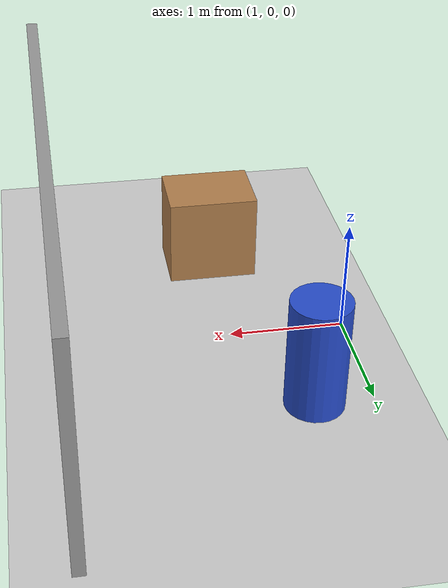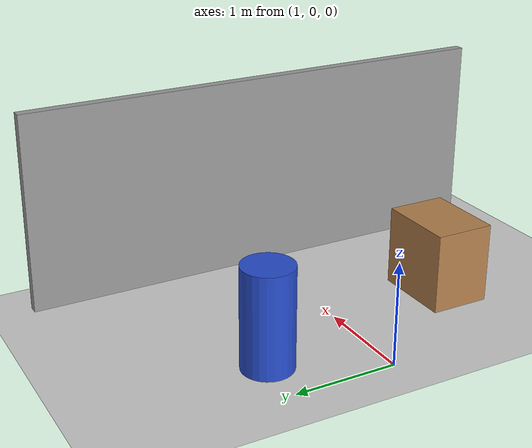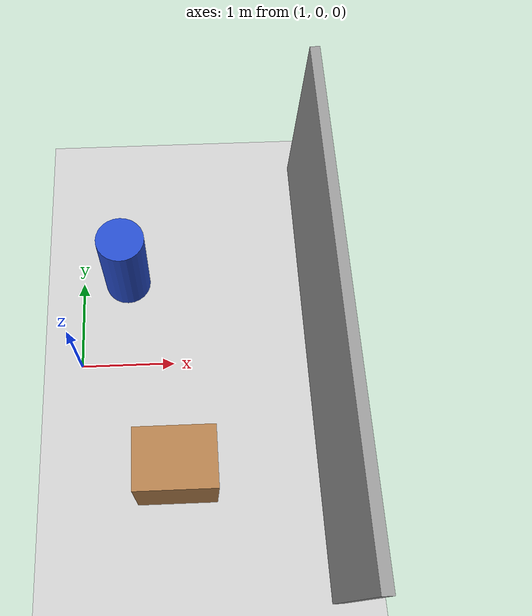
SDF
<?xml version="1.0" ?>
<sdf version="1.6">
  <world name="healthcare_room">

    <!-- Sun Light Source -->
    <include>
      <uri>model://sun</uri>
    </include>

    <!-- Ground Plane -->
    <include>
      <uri>model://ground_plane</uri>
    </include>

    <!-- Room Physics Defaults -->
    <physics type="ode">
      <real_time_update_rate>1000.0</real_time_update_rate>
      <max_step_size>0.001</max_step_size>
      <real_time_factor>1.0</real_time_factor>
    </physics>

    <!-- Test Obstacle 1: Cylindrical Pillar -->
    <model name="obstacle_pillar_1">
      <pose>1.5 1.0 0.5 0 0 0</pose>
      <static>true</static>
      <link name="link">
        <visual name="visual">
          <geometry>
            <cylinder>
              <radius>0.25</radius>
              <length>1.0</length>
            </cylinder>
          </geometry>
          <material>
            <script>
              <uri>file://media/materials/scripts/gazebo.material</uri>
              <name>Gazebo/Blue</name>
            </script>
          </material>
        </visual>
        <collision name="collision">
          <geometry>
            <cylinder>
              <radius>0.25</radius>
              <length>1.0</length>
            </cylinder>
          </geometry>
        </collision>
      </link>
    </model>

    <!-- Test Obstacle 2: Rectangular Table/Box -->
    <model name="obstacle_box_1">
      <pose>2.0 -1.2 0.4 0 0 0</pose>
      <static>true</static>
      <link name="link">
        <visual name="visual">
          <geometry>
            <box>
              <size>0.8 0.6 0.8</size>
            </box>
          </geometry>
          <material>
            <script>
              <uri>file://media/materials/scripts/gazebo.material</uri>
              <name>Gazebo/Wood</name>
            </script>
          </material>
        </visual>
        <collision name="collision">
          <geometry>
            <box>
              <size>0.8 0.6 0.8</size>
            </box>
          </geometry>
        </collision>
      </link>
    </model>

    <!-- Test Obstacle 3: Wall Section -->
    <model name="room_wall_back">
      <pose>3.5 0 1.0 0 0 0</pose>
      <static>true</static>
      <link name="link">
        <visual name="visual">
          <geometry>
            <box>
              <size>0.1 5.0 2.0</size>
            </box>
          </geometry>
          <material>
            <script>
              <uri>file://media/materials/scripts/gazebo.material</uri>
              <name>Gazebo/Grey</name>
            </script>
          </material>
        </visual>
        <collision name="collision">
          <geometry>
            <box>
              <size>0.1 5.0 2.0</size>
            </box>
          </geometry>
        </collision>
      </link>
    </model>

  </world>
</sdf>
